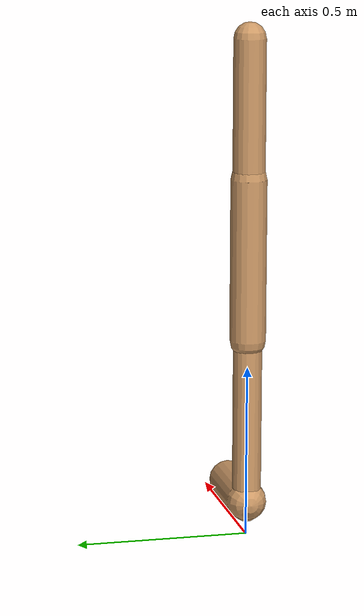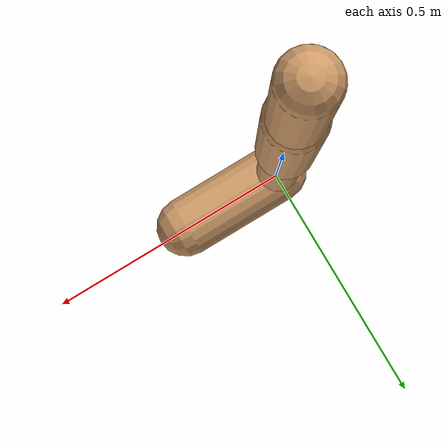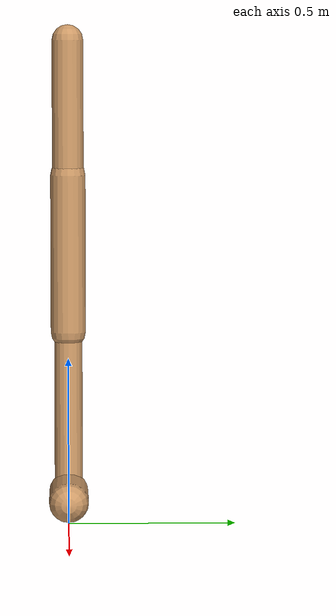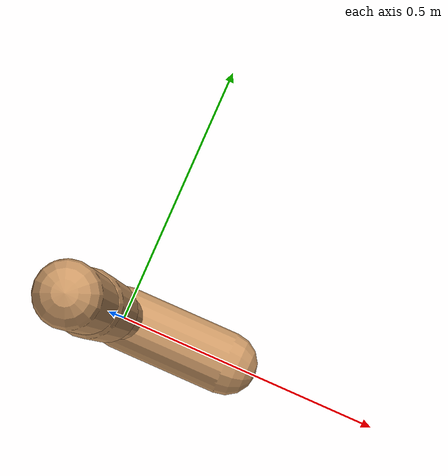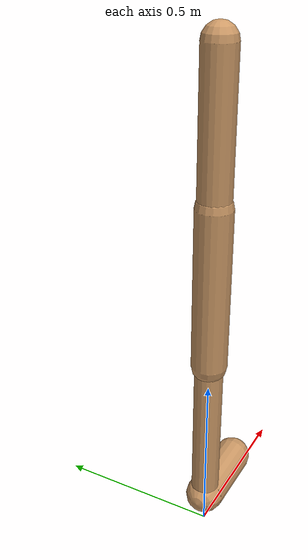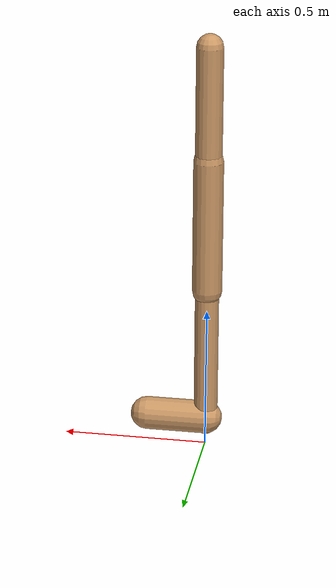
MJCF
<mujoco model="walker2d">
  <compiler angle="degree" coordinate="global" inertiafromgeom="true" />
  <default>
    <joint armature="0.01" damping=".1" limited="true" />
    <geom conaffinity="0" condim="3" contype="1" density="1000" friction="0.8 .1 .1" rgba="0.8 0.6 .4 1" />
  </default>
  <option integrator="RK4" timestep="0.002" />
  <worldbody>

    <body name="torso" pos="0 0 0.038392863849140445">
      <joint armature="0" axis="1 0 0" damping="0" limited="false" name="ignorex" pos="0 0 0" stiffness="0" type="slide" />
      <joint armature="0" axis="0 0 1" damping="0" limited="false" name="ignorez" pos="0 0 0" ref="1.25" stiffness="0" type="slide" />
      <joint armature="0" axis="0 1 0" damping="0" limited="false" name="ignorey" pos="0 0 0" stiffness="0" type="hinge" />
      <geom fromto="0 0 1.45 0 0 1.05" name="torso_geom" size="0.04657695954009592" type="capsule" />
      <body name="thigh">
        <joint axis="0 -1 0" name="thigh_joint" pos="0 0 1.05" range="-150 0" type="hinge" />
        <geom fromto="0.0 0.0 1.05 0.0 0.0 0.5818139065977755" name="thigh_geom" size="0.052066267954848644" type="capsule" />
        <body name="leg" pos="0.0 0.0 -0.018186093402224435">
          <joint axis="0 -1 0" name="leg_joint" pos="0 0 0.6" range="-150 0" type="hinge" />
          <geom fromto="0.0 0.0 0.6 0.0 0.0 0.07979322955308399" name="leg_geom" size="0.041653014363878915" type="capsule" />
          <body name="foot" pos="0.0 0.0 -0.020206770446916017">
            <joint axis="0 -1 0" name="foot_joint" pos="0 0 0.1" range="-45 45" type="hinge" />
            <geom fromto="-0.0 0.0 0.1 0.2076697734918263 0.0 0.1" name="foot_geom" size="0.058021324096957726" type="capsule" />
          </body>
        </body>
      </body>

      <body name="thigh_left">
        <joint axis="0 -1 0" name="thigh_left_joint" pos="0 0 1.05" range="-150 0" type="hinge" />
        <geom fromto="0.0 0.0 1.05 0.0 0.0 0.5818139065977755" name="thigh_left_geom" rgba=".7 .3 .6 1" size="0.052066267954848644" type="capsule" />
        <body name="leg_left" pos="0.0 0.0 -0.018186093402224435">
          <joint axis="0 -1 0" name="leg_left_joint" pos="0 0 0.6" range="-150 0" type="hinge" />
          <geom fromto="0.0 0.0 0.6 0.0 0.0 0.07979322955308399" name="leg_left_geom" rgba=".7 .3 .6 1" size="0.041653014363878915" type="capsule" />
          <body name="foot_left" pos="0.0 0.0 -0.020206770446916017">
            <joint axis="0 -1 0" name="foot_left_joint" pos="0 0 0.1" range="-45 45" type="hinge" />
            <geom fromto="-0.0 0.0 0.1 0.2076697734918263 0.0 0.1" name="foot_left_geom" rgba=".7 .3 .6 1" size="0.058021324096957726" type="capsule" />
          </body>
        </body>
      </body>
    </body>
  </worldbody>
  <actuator>

    <motor ctrllimited="true" ctrlrange="-1.0 1.0" gear="100" joint="thigh_joint" />
    <motor ctrllimited="true" ctrlrange="-1.0 1.0" gear="100" joint="leg_joint" />
    <motor ctrllimited="true" ctrlrange="-1.0 1.0" gear="100" joint="foot_joint" />
    <motor ctrllimited="true" ctrlrange="-1.0 1.0" gear="100" joint="thigh_left_joint" />
    <motor ctrllimited="true" ctrlrange="-1.0 1.0" gear="100" joint="leg_left_joint" />
    <motor ctrllimited="true" ctrlrange="-1.0 1.0" gear="100" joint="foot_left_joint" />

  </actuator>
</mujoco>
